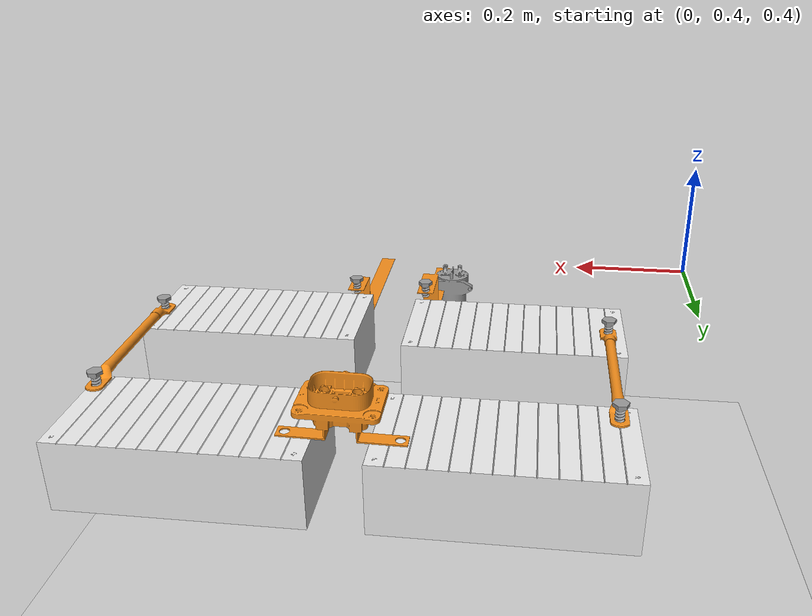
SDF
<sdf version="1.6">
 <world name="Pack6">
  <include><uri>model://sun</uri></include>
  <include><uri>model://ground_plane</uri></include>
  <include>
   <uri>/home/wanghu26/battery_ws/src/battery_model/model_editor_models/HW_battery_module_sc_fr_half</uri>
   <pose>0.308 0.775 0.40 0 0 0</pose>
  </include>
  <include>
   <uri>/home/wanghu26/battery_ws/src/battery_model/model_editor_models/HW_battery_module_sc_fr_1_half</uri>
   <pose>0.308 1.078 0.40 0 0 0</pose>
  </include>
  <include>
   <uri>/home/wanghu26/battery_ws/src/battery_model/model_editor_models/HW_battery_module_sc_fr_2_half</uri>
   <pose>0.71 1.078 0.40 0 0 0</pose>
  </include>
  <include>
   <uri>/home/wanghu26/battery_ws/src/battery_model/model_editor_models/HW_battery_module_sc_fr_3_half</uri>
   <pose>0.71 0.765 0.40 0 0 0</pose>
  </include>
  <include>
   <uri>/home/wanghu26/battery_ws/src/battery_model/model_editor_models/HW_HV_cable_sc_f</uri>
   <pose>0.17 0.928 0.47 0 0 0</pose>
  </include>
  <include>
   <uri>/home/wanghu26/battery_ws/src/battery_model/model_editor_models/HW_HV_cable_sc_f_1</uri>
   <pose>0.85 0.926 0.473 0 0 0</pose>
  </include>
  <include>
   <uri>/home/wanghu26/battery_ws/src/battery_model/model_editor_models/HW_tap_bolt_sc_f_0</uri>
   <pose>0.455 0.703 0.47 0 0 0</pose>
  </include>
  <include>
   <uri>/home/wanghu26/battery_ws/src/battery_model/model_editor_models/HW_tap_bolt_sc_f_1</uri>
   <pose>0.17 0.810 0.47 0 0 0</pose>
  </include>
  <include>
   <uri>/home/wanghu26/battery_ws/src/battery_model/model_editor_models/HW_tap_bolt_sc_f_2</uri>
   <pose>0.17 1.045 0.47 0 0 0</pose>
  </include>
  <include>
   <uri>/home/wanghu26/battery_ws/src/battery_model/model_editor_models/HW_tap_bolt_sc_f_3</uri>
   <pose>0.85 1.045 0.47 0 0 0</pose>
  </include>
  <include>
   <uri>/home/wanghu26/battery_ws/src/battery_model/model_editor_models/HW_tap_bolt_sc_f_4</uri>
   <pose>0.85 0.810 0.47 0 0 0</pose>
  </include>
  <include>
   <uri>/home/wanghu26/battery_ws/src/battery_model/model_editor_models/HW_tap_bolt_sc_f_5</uri>
   <pose>0.568 0.700 0.47 0 0 0</pose>
  </include>
  <include>
   <uri>/home/wanghu26/battery_ws/src/battery_model/model_editor_models/Contactor</uri>
   <pose>0.443 0.509 0.4 0 0 0</pose>
  </include>
  <include>
   <uri>/home/wanghu26/battery_ws/src/battery_model/model_editor_models/bus_neg</uri>
   <pose>0.555 0.713 0.470 0 0 0</pose>
  </include>
  <include>
   <uri>/home/wanghu26/battery_ws/src/battery_model/model_editor_models/bus_pos</uri>
   <pose>0.442 0.712 0.470 0 0 0</pose>
  </include>
  <include>
   <uri>/home/wanghu26/battery_ws/src/battery_model/model_editor_models/MSD</uri>
   <pose>0.496 1.129 0.482 0 0 0</pose>
  </include>
 </world>
</sdf>

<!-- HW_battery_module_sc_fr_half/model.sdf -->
<sdf version='1.6'>
  <model name='HW_battery_module_sc_fr_half'>
    <link name='link_1'>
      <inertial>
        <mass>10</mass>
        <inertia>
          <ixx>0.1275</ixx>
          <ixy>0</ixy>
          <ixz>0</ixz>
          <iyy>0.3997</iyy>
          <iyz>0</iyz>
          <izz>0.4538</izz>
        </inertia>
      </inertial>
      <pose>-0 0 0 0 -0 0</pose>
      <visual name='visual'>
        <pose>0 0 0 0 -0 0</pose>
        <geometry>
          <mesh>
            <uri>/home/wanghu26/battery_ws/src/battery_model/battery_model_stl/HW_Battery Module.stl</uri>
            <scale>0.5 0.5 0.5</scale>
          </mesh>
        </geometry>
        <material>
          <lighting>1</lighting>
          <script>
            <uri>file://media/materials/scripts/gazebo.material</uri>
            <name>Gazebo/White</name>
          </script>
          <shader type='pixel'/>
        </material>
        <transparency>0</transparency>
        <cast_shadows>1</cast_shadows>
      </visual>
      <collision name='collision'>
        <laser_retro>0</laser_retro>
        <max_contacts>10</max_contacts>
        <pose>0 0 0 0 -0 0</pose>
        <geometry>
          <box>
            <size>0.33 0.165 0.105</size>
          </box>
        </geometry>
        <surface>
          <friction>
            <ode>
              <mu>1</mu>
              <mu2>1</mu2>
              <fdir1>0 0 0</fdir1>
              <slip1>0</slip1>
              <slip2>0</slip2>
            </ode>
            <torsional>
              <coefficient>1</coefficient>
              <patch_radius>0</patch_radius>
              <surface_radius>0</surface_radius>
              <use_patch_radius>1</use_patch_radius>
              <ode>
                <slip>0</slip>
              </ode>
            </torsional>
          </friction>
          <bounce>
            <restitution_coefficient>0</restitution_coefficient>
            <threshold>1e+06</threshold>
          </bounce>
          <contact>
            <collide_without_contact>0</collide_without_contact>
            <collide_without_contact_bitmask>1</collide_without_contact_bitmask>
            <collide_bitmask>1</collide_bitmask>
            <ode>
              <soft_cfm>0</soft_cfm>
              <soft_erp>0.2</soft_erp>
              <kp>1e+13</kp>
              <kd>1</kd>
              <max_vel>0.01</max_vel>
              <min_depth>0.0001</min_depth>
            </ode>
            <bullet>
              <split_impulse>1</split_impulse>
              <split_impulse_penetration_threshold>-0.01</split_impulse_penetration_threshold>
              <soft_cfm>0</soft_cfm>
              <soft_erp>0.2</soft_erp>
              <kp>1e+13</kp>
              <kd>1</kd>
            </bullet>
          </contact>
        </surface>
      </collision>
    </link>
    <static>1</static>
    <allow_auto_disable>1</allow_auto_disable>
  </model>
</sdf>

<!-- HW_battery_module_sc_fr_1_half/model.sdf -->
<sdf version='1.6'>
  <model name='HW_battery_module_sc_fr_1_half'>
    <link name='link_1'>
      <inertial>
        <mass>10</mass>
        <inertia>
          <ixx>0.1275</ixx>
          <ixy>0</ixy>
          <ixz>0</ixz>
          <iyy>0.3997</iyy>
          <iyz>0</iyz>
          <izz>0.4538</izz>
        </inertia>
      </inertial>
      <pose>-0 0 0 0 -0 0</pose>
      <visual name='visual'>
        <pose>0 0 0 0 -0 0</pose>
        <geometry>
          <mesh>
            <uri>/home/wanghu26/battery_ws/src/battery_model/battery_model_stl/HW_Battery Module.stl</uri>
            <scale>0.5 0.5 0.5</scale>
          </mesh>
        </geometry>
        <material>
          <lighting>1</lighting>
          <script>
            <uri>file://media/materials/scripts/gazebo.material</uri>
            <name>Gazebo/White</name>
          </script>
          <shader type='pixel'/>
        </material>
        <transparency>0</transparency>
        <cast_shadows>1</cast_shadows>
      </visual>
      <collision name='collision'>
        <laser_retro>0</laser_retro>
        <max_contacts>10</max_contacts>
        <pose>0 0 0 0 -0 0</pose>
        <geometry>
          <box>
            <size>0.33 0.165 0.105</size>
          </box>
        </geometry>
        <surface>
          <friction>
            <ode>
              <mu>1</mu>
              <mu2>1</mu2>
              <fdir1>0 0 0</fdir1>
              <slip1>0</slip1>
              <slip2>0</slip2>
            </ode>
            <torsional>
              <coefficient>1</coefficient>
              <patch_radius>0</patch_radius>
              <surface_radius>0</surface_radius>
              <use_patch_radius>1</use_patch_radius>
              <ode>
                <slip>0</slip>
              </ode>
            </torsional>
          </friction>
          <bounce>
            <restitution_coefficient>0</restitution_coefficient>
            <threshold>1e+06</threshold>
          </bounce>
          <contact>
            <collide_without_contact>0</collide_without_contact>
            <collide_without_contact_bitmask>1</collide_without_contact_bitmask>
            <collide_bitmask>1</collide_bitmask>
            <ode>
              <soft_cfm>0</soft_cfm>
              <soft_erp>0.2</soft_erp>
              <kp>1e+13</kp>
              <kd>1</kd>
              <max_vel>0.01</max_vel>
              <min_depth>0.0001</min_depth>
            </ode>
            <bullet>
              <split_impulse>1</split_impulse>
              <split_impulse_penetration_threshold>-0.01</split_impulse_penetration_threshold>
              <soft_cfm>0</soft_cfm>
              <soft_erp>0.2</soft_erp>
              <kp>1e+13</kp>
              <kd>1</kd>
            </bullet>
          </contact>
        </surface>
      </collision>
    </link>
    <static>1</static>
    <allow_auto_disable>1</allow_auto_disable>
  </model>
</sdf>

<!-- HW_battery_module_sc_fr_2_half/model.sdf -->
<sdf version='1.6'>
  <model name='HW_battery_module_sc_fr_2_half'>
    <link name='link_1'>
      <inertial>
        <mass>10</mass>
        <inertia>
          <ixx>0.1275</ixx>
          <ixy>0</ixy>
          <ixz>0</ixz>
          <iyy>0.3997</iyy>
          <iyz>0</iyz>
          <izz>0.4538</izz>
        </inertia>
      </inertial>
      <pose>-0 0 0 0 -0 0</pose>
      <visual name='visual'>
        <pose>0 0 0 0 -0 0</pose>
        <geometry>
          <mesh>
            <uri>/home/wanghu26/battery_ws/src/battery_model/battery_model_stl/HW_Battery Module.stl</uri>
            <scale>0.5 0.5 0.5</scale>
          </mesh>
        </geometry>
        <material>
          <lighting>1</lighting>
          <script>
            <uri>file://media/materials/scripts/gazebo.material</uri>
            <name>Gazebo/White</name>
          </script>
          <shader type='pixel'/>
        </material>
        <transparency>0</transparency>
        <cast_shadows>1</cast_shadows>
      </visual>
      <collision name='collision'>
        <laser_retro>0</laser_retro>
        <max_contacts>10</max_contacts>
        <pose>0 0 0 0 -0 0</pose>
        <geometry>
          <box>
            <size>0.33 0.165 0.105</size>
          </box>
        </geometry>
        <surface>
          <friction>
            <ode>
              <mu>1</mu>
              <mu2>1</mu2>
              <fdir1>0 0 0</fdir1>
              <slip1>0</slip1>
              <slip2>0</slip2>
            </ode>
            <torsional>
              <coefficient>1</coefficient>
              <patch_radius>0</patch_radius>
              <surface_radius>0</surface_radius>
              <use_patch_radius>1</use_patch_radius>
              <ode>
                <slip>0</slip>
              </ode>
            </torsional>
          </friction>
          <bounce>
            <restitution_coefficient>0</restitution_coefficient>
            <threshold>1e+06</threshold>
          </bounce>
          <contact>
            <collide_without_contact>0</collide_without_contact>
            <collide_without_contact_bitmask>1</collide_without_contact_bitmask>
            <collide_bitmask>1</collide_bitmask>
            <ode>
              <soft_cfm>0</soft_cfm>
              <soft_erp>0.2</soft_erp>
              <kp>1e+13</kp>
              <kd>1</kd>
              <max_vel>0.01</max_vel>
              <min_depth>0.0001</min_depth>
            </ode>
            <bullet>
              <split_impulse>1</split_impulse>
              <split_impulse_penetration_threshold>-0.01</split_impulse_penetration_threshold>
              <soft_cfm>0</soft_cfm>
              <soft_erp>0.2</soft_erp>
              <kp>1e+13</kp>
              <kd>1</kd>
            </bullet>
          </contact>
        </surface>
      </collision>
    </link>
    <static>1</static>
    <allow_auto_disable>1</allow_auto_disable>
  </model>
</sdf>

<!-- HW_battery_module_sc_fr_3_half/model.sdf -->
<sdf version='1.6'>
  <model name='HW_battery_module_sc_fr_3_half'>
    <link name='link_1'>
      <inertial>
        <mass>10</mass>
        <inertia>
          <ixx>0.1275</ixx>
          <ixy>0</ixy>
          <ixz>0</ixz>
          <iyy>0.3997</iyy>
          <iyz>0</iyz>
          <izz>0.4538</izz>
        </inertia>
      </inertial>
      <pose>-0 0 0 0 -0 0</pose>
      <visual name='visual'>
        <pose>0 0 0 0 -0 0</pose>
        <geometry>
          <mesh>
            <uri>/home/wanghu26/battery_ws/src/battery_model/battery_model_stl/HW_Battery Module.stl</uri>
            <scale>0.5 0.5 0.5</scale>
          </mesh>
        </geometry>
        <material>
          <lighting>1</lighting>
          <script>
            <uri>file://media/materials/scripts/gazebo.material</uri>
            <name>Gazebo/White</name>
          </script>
          <shader type='pixel'/>
        </material>
        <transparency>0</transparency>
        <cast_shadows>1</cast_shadows>
      </visual>
      <collision name='collision'>
        <laser_retro>0</laser_retro>
        <max_contacts>10</max_contacts>
        <pose>0 0 0 0 -0 0</pose>
        <geometry>
          <box>
            <size>0.33 0.165 0.105</size>
          </box>
        </geometry>
        <surface>
          <friction>
            <ode>
              <mu>1</mu>
              <mu2>1</mu2>
              <fdir1>0 0 0</fdir1>
              <slip1>0</slip1>
              <slip2>0</slip2>
            </ode>
            <torsional>
              <coefficient>1</coefficient>
              <patch_radius>0</patch_radius>
              <surface_radius>0</surface_radius>
              <use_patch_radius>1</use_patch_radius>
              <ode>
                <slip>0</slip>
              </ode>
            </torsional>
          </friction>
          <bounce>
            <restitution_coefficient>0</restitution_coefficient>
            <threshold>1e+06</threshold>
          </bounce>
          <contact>
            <collide_without_contact>0</collide_without_contact>
            <collide_without_contact_bitmask>1</collide_without_contact_bitmask>
            <collide_bitmask>1</collide_bitmask>
            <ode>
              <soft_cfm>0</soft_cfm>
              <soft_erp>0.2</soft_erp>
              <kp>1e+13</kp>
              <kd>1</kd>
              <max_vel>0.01</max_vel>
              <min_depth>0.0001</min_depth>
            </ode>
            <bullet>
              <split_impulse>1</split_impulse>
              <split_impulse_penetration_threshold>-0.01</split_impulse_penetration_threshold>
              <soft_cfm>0</soft_cfm>
              <soft_erp>0.2</soft_erp>
              <kp>1e+13</kp>
              <kd>1</kd>
            </bullet>
          </contact>
        </surface>
      </collision>
    </link>
    <static>1</static>
    <allow_auto_disable>1</allow_auto_disable>
  </model>
</sdf>

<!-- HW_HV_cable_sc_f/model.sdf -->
<sdf version='1.6'>
  <model name='HW_HV_cable_sc_f'>
    <link name='link_1'>
      <inertial>
        <mass>0.5</mass>
        <inertia>
          <ixx>0.0017</ixx>
          <ixy>0</ixy>
          <ixz>0</ixz>
          <iyy>3.3333e-4</iyy>
          <iyz>0</iyz>
          <izz>0.0017</izz>
        </inertia>
      </inertial>
      <pose>0 0 -0 0 -0 0</pose>
      <visual name='visual'>
        <pose>0 0 0 0 -0 0</pose>
        <geometry>
          <mesh>
            <uri>/home/wanghu26/battery_ws/src/battery_model/battery_model_stl/HW_HV_cable .stl</uri>
            <scale>1 1 1</scale>
          </mesh>
        </geometry>
        <material>
          <lighting>1</lighting>
          <script>
            <uri>file://media/materials/scripts/gazebo.material</uri>
            <name>Gazebo/Orange</name>
          </script>
          <shader type='pixel'/>
        </material>
        <transparency>0</transparency>
        <cast_shadows>1</cast_shadows>
      </visual>
      <collision name='collision'>
        <laser_retro>0</laser_retro>
        <max_contacts>10</max_contacts>
        <pose>0.2 0 0 0 -0 0</pose>
        <geometry>
            <box>
              <size>0.02 0.15 0.02</size>
            </box>
        </geometry>
        <surface>
          <friction>
            <ode>
              <mu>1</mu>
              <mu2>1</mu2>
              <fdir1>0 0 0</fdir1>
              <slip1>0</slip1>
              <slip2>0</slip2>
            </ode>
            <torsional>
              <coefficient>1</coefficient>
              <patch_radius>0</patch_radius>
              <surface_radius>0</surface_radius>
              <use_patch_radius>1</use_patch_radius>
              <ode>
                <slip>0</slip>
              </ode>
            </torsional>
          </friction>
          <bounce>
            <restitution_coefficient>0</restitution_coefficient>
            <threshold>1e+06</threshold>
          </bounce>
          <contact>
            <collide_without_contact>0</collide_without_contact>
            <collide_without_contact_bitmask>1</collide_without_contact_bitmask>
            <collide_bitmask>1</collide_bitmask>
            <ode>
              <soft_cfm>0</soft_cfm>
              <soft_erp>0.2</soft_erp>
              <kp>1e+13</kp>
              <kd>1</kd>
              <max_vel>0.01</max_vel>
              <min_depth>0</min_depth>
            </ode>
            <bullet>
              <split_impulse>1</split_impulse>
              <split_impulse_penetration_threshold>-0.01</split_impulse_penetration_threshold>
              <soft_cfm>0</soft_cfm>
              <soft_erp>0.2</soft_erp>
              <kp>1e+13</kp>
              <kd>1</kd>
            </bullet>
          </contact>
        </surface>
      </collision>
    </link>
    <static>1</static>
    <allow_auto_disable>1</allow_auto_disable>

  <plugin name="groun_truth" filename="libgazebo_ros_p3d.so">
	<frameName>map</frameName>
	<bodyName>link_1</bodyName>
	<topicName>odom0a</topicName>
	<updateRate>30.0</updateRate>
  </plugin>

  </model>
</sdf>

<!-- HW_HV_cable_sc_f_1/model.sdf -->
<sdf version='1.6'>
  <model name='HW_HV_cable_sc_f_1'>
    <link name='link_1'>
      <inertial>
        <mass>0.5</mass>
        <inertia>
          <ixx>0.0017</ixx>
          <ixy>0</ixy>
          <ixz>0</ixz>
          <iyy>3.3333e-4</iyy>
          <iyz>0</iyz>
          <izz>0.0017</izz>
        </inertia>
      </inertial>
      <pose>0 0 -0 0 -0 0</pose>
      <visual name='visual'>
        <pose>0 0 0 0 -0 0</pose>
        <geometry>
          <mesh>
            <uri>/home/wanghu26/battery_ws/src/battery_model/battery_model_stl/HW_HV_cable .stl</uri>
            <scale>1 1 1</scale>
          </mesh>
        </geometry>
        <material>
          <lighting>1</lighting>
          <script>
            <uri>file://media/materials/scripts/gazebo.material</uri>
            <name>Gazebo/Orange</name>
          </script>
          <shader type='pixel'/>
        </material>
        <transparency>0</transparency>
        <cast_shadows>1</cast_shadows>
      </visual>
      <collision name='collision'>
        <laser_retro>0</laser_retro>
        <max_contacts>10</max_contacts>
        <pose>0.1 0 0 0 -0 0</pose>
        <geometry>
            <box>
              <size>0.02 0.2 0.02</size>
            </box>
        </geometry>
        <surface>
          <friction>
            <ode>
              <mu>1</mu>
              <mu2>1</mu2>
              <fdir1>0 0 0</fdir1>
              <slip1>0</slip1>
              <slip2>0</slip2>
            </ode>
            <torsional>
              <coefficient>1</coefficient>
              <patch_radius>0</patch_radius>
              <surface_radius>0</surface_radius>
              <use_patch_radius>1</use_patch_radius>
              <ode>
                <slip>0</slip>
              </ode>
            </torsional>
          </friction>
          <bounce>
            <restitution_coefficient>0</restitution_coefficient>
            <threshold>1e+06</threshold>
          </bounce>
          <contact>
            <collide_without_contact>0</collide_without_contact>
            <collide_without_contact_bitmask>1</collide_without_contact_bitmask>
            <collide_bitmask>1</collide_bitmask>
            <ode>
              <soft_cfm>0</soft_cfm>
              <soft_erp>0.2</soft_erp>
              <kp>1e+13</kp>
              <kd>1</kd>
              <max_vel>0.01</max_vel>
              <min_depth>0</min_depth>
            </ode>
            <bullet>
              <split_impulse>1</split_impulse>
              <split_impulse_penetration_threshold>-0.01</split_impulse_penetration_threshold>
              <soft_cfm>0</soft_cfm>
              <soft_erp>0.2</soft_erp>
              <kp>1e+13</kp>
              <kd>1</kd>
            </bullet>
          </contact>
        </surface>
      </collision>
    </link>
    <static>1</static>
    <allow_auto_disable>1</allow_auto_disable>

  <plugin name="groun_truth" filename="libgazebo_ros_p3d.so">
	<frameName>map</frameName>
	<bodyName>link_1</bodyName>
	<topicName>odom1a</topicName>
	<updateRate>30.0</updateRate>
  </plugin>

  </model>
</sdf>

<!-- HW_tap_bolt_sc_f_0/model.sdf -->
<sdf version='1.6'>
  <model name='HW_tap_bolt_sc_f_0'>
    <link name='link_2'>
      <inertial>
        <mass>1</mass>
        <inertia>
          <ixx>0.0166667</ixx>
          <ixy>0</ixy>
          <ixz>0</ixz>
          <iyy>0.0166667</iyy>
          <iyz>0</iyz>
          <izz>0.0166667</izz>
        </inertia>
      </inertial>
      <pose>0 0 -1e-06 3.14159 -0.002979 3.14159</pose>
      <visual name='visual'>
        <pose>0 0 0 0 -0 0</pose>
        <geometry>
          <mesh>
            <uri>/home/wanghu26/battery_ws/src/battery_model/battery_model_stl/HW_hex_bolt_tap_thread.stl</uri>
            <scale>1 1 1</scale>
          </mesh>
        </geometry>
        <material>
          <lighting>1</lighting>
          <script>
            <uri>file://media/materials/scripts/gazebo.material</uri>
            <name>Gazebo/Grey</name>
          </script>
          <shader type='pixel'/>
        </material>
        <transparency>0</transparency>
        <cast_shadows>1</cast_shadows>
      </visual>
      <collision name='collision'>
        <laser_retro>0</laser_retro>
        <max_contacts>10</max_contacts>
        <pose>0 -0.1 0 0 -0 0</pose>
        <geometry>
          <box>
            <size>0.02 0.02 0.04</size>
          </box>
        </geometry>
        <surface>
          <friction>
            <ode>
              <mu>1</mu>
              <mu2>1</mu2>
              <fdir1>0 0 0</fdir1>
              <slip1>0</slip1>
              <slip2>0</slip2>
            </ode>
            <torsional>
              <coefficient>1</coefficient>
              <patch_radius>0.1</patch_radius>
              <surface_radius>0.1</surface_radius>
              <use_patch_radius>1</use_patch_radius>
              <ode>
                <slip>0</slip>
              </ode>
            </torsional>
          </friction>
          <bounce>
            <restitution_coefficient>0</restitution_coefficient>
            <threshold>1e+06</threshold>
          </bounce>
          <contact>
            <collide_without_contact>0</collide_without_contact>
            <collide_without_contact_bitmask>1</collide_without_contact_bitmask>
            <collide_bitmask>1</collide_bitmask>
            <ode>
              <soft_cfm>0</soft_cfm>
              <soft_erp>0.2</soft_erp>
              <kp>1e+13</kp>
              <kd>1</kd>
              <max_vel>0.01</max_vel>
              <min_depth>0</min_depth>
            </ode>
            <bullet>
              <split_impulse>1</split_impulse>
              <split_impulse_penetration_threshold>-0.01</split_impulse_penetration_threshold>
              <soft_cfm>0</soft_cfm>
              <soft_erp>0.2</soft_erp>
              <kp>1e+13</kp>
              <kd>1</kd>
            </bullet>
          </contact>
        </surface>
      </collision>
    </link>
    <static>1</static>
    <allow_auto_disable>1</allow_auto_disable>
  </model>
</sdf>

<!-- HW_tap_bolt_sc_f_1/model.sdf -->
<sdf version='1.6'>
  <model name='HW_tap_bolt_sc_f_1'>
    <link name='link_2'>
      <inertial>
        <mass>1</mass>
        <inertia>
          <ixx>0.0166667</ixx>
          <ixy>0</ixy>
          <ixz>0</ixz>
          <iyy>0.0166667</iyy>
          <iyz>0</iyz>
          <izz>0.0166667</izz>
        </inertia>
      </inertial>
      <pose>0 0 -1e-06 3.14159 -0.002979 3.14159</pose>
      <visual name='visual'>
        <pose>0 0 0 0 -0 0</pose>
        <geometry>
          <mesh>
            <uri>/home/wanghu26/battery_ws/src/battery_model/battery_model_stl/HW_hex_bolt_tap_thread.stl</uri>
            <scale>1 1 1</scale>
          </mesh>
        </geometry>
        <material>
          <lighting>1</lighting>
          <script>
            <uri>file://media/materials/scripts/gazebo.material</uri>
            <name>Gazebo/Grey</name>
          </script>
          <shader type='pixel'/>
        </material>
        <transparency>0</transparency>
        <cast_shadows>1</cast_shadows>
      </visual>
      <collision name='collision'>
        <laser_retro>0</laser_retro>
        <max_contacts>10</max_contacts>
        <pose>0 0.1 0 0 -0 0</pose>
        <geometry>
          <box>
            <size>0.02 0.02 0.04</size>
          </box>
        </geometry>
        <surface>
          <friction>
            <ode>
              <mu>1</mu>
              <mu2>1</mu2>
              <fdir1>0 0 0</fdir1>
              <slip1>0</slip1>
              <slip2>0</slip2>
            </ode>
            <torsional>
              <coefficient>1</coefficient>
              <patch_radius>0.1</patch_radius>
              <surface_radius>0.1</surface_radius>
              <use_patch_radius>1</use_patch_radius>
              <ode>
                <slip>0</slip>
              </ode>
            </torsional>
          </friction>
          <bounce>
            <restitution_coefficient>0</restitution_coefficient>
            <threshold>1e+06</threshold>
          </bounce>
          <contact>
            <collide_without_contact>0</collide_without_contact>
            <collide_without_contact_bitmask>1</collide_without_contact_bitmask>
            <collide_bitmask>1</collide_bitmask>
            <ode>
              <soft_cfm>0</soft_cfm>
              <soft_erp>0.2</soft_erp>
              <kp>1e+13</kp>
              <kd>1</kd>
              <max_vel>0.01</max_vel>
              <min_depth>0</min_depth>
            </ode>
            <bullet>
              <split_impulse>1</split_impulse>
              <split_impulse_penetration_threshold>-0.01</split_impulse_penetration_threshold>
              <soft_cfm>0</soft_cfm>
              <soft_erp>0.2</soft_erp>
              <kp>1e+13</kp>
              <kd>1</kd>
            </bullet>
          </contact>
        </surface>
      </collision>
    </link>
    <static>1</static>
    <allow_auto_disable>1</allow_auto_disable>
  </model>
</sdf>

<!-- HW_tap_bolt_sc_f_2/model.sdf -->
<sdf version='1.6'>
  <model name='HW_tap_bolt_sc_f_2'>
    <link name='link_2'>
      <inertial>
        <mass>1</mass>
        <inertia>
          <ixx>0.0166667</ixx>
          <ixy>0</ixy>
          <ixz>0</ixz>
          <iyy>0.0166667</iyy>
          <iyz>0</iyz>
          <izz>0.0166667</izz>
        </inertia>
      </inertial>
      <pose>0 0 -1e-06 3.14159 -0.002979 3.14159</pose>
      <visual name='visual'>
        <pose>0 0 0 0 -0 0</pose>
        <geometry>
          <mesh>
            <uri>/home/wanghu26/battery_ws/src/battery_model/battery_model_stl/HW_hex_bolt_tap_thread.stl</uri>
            <scale>1 1 1</scale>
          </mesh>
        </geometry>
        <material>
          <lighting>1</lighting>
          <script>
            <uri>file://media/materials/scripts/gazebo.material</uri>
            <name>Gazebo/Grey</name>
          </script>
          <shader type='pixel'/>
        </material>
        <transparency>0</transparency>
        <cast_shadows>1</cast_shadows>
      </visual>
      <collision name='collision'>
        <laser_retro>0</laser_retro>
        <max_contacts>10</max_contacts>
        <pose>0 0.1 0 0 -0 0</pose>
        <geometry>
          <box>
            <size>0.02 0.02 0.04</size>
          </box>
        </geometry>
        <surface>
          <friction>
            <ode>
              <mu>1</mu>
              <mu2>1</mu2>
              <fdir1>0 0 0</fdir1>
              <slip1>0</slip1>
              <slip2>0</slip2>
            </ode>
            <torsional>
              <coefficient>1</coefficient>
              <patch_radius>0.1</patch_radius>
              <surface_radius>0.1</surface_radius>
              <use_patch_radius>1</use_patch_radius>
              <ode>
                <slip>0</slip>
              </ode>
            </torsional>
          </friction>
          <bounce>
            <restitution_coefficient>0</restitution_coefficient>
            <threshold>1e+06</threshold>
          </bounce>
          <contact>
            <collide_without_contact>0</collide_without_contact>
            <collide_without_contact_bitmask>1</collide_without_contact_bitmask>
            <collide_bitmask>1</collide_bitmask>
            <ode>
              <soft_cfm>0</soft_cfm>
              <soft_erp>0.2</soft_erp>
              <kp>1e+13</kp>
              <kd>1</kd>
              <max_vel>0.01</max_vel>
              <min_depth>0</min_depth>
            </ode>
            <bullet>
              <split_impulse>1</split_impulse>
              <split_impulse_penetration_threshold>-0.01</split_impulse_penetration_threshold>
              <soft_cfm>0</soft_cfm>
              <soft_erp>0.2</soft_erp>
              <kp>1e+13</kp>
              <kd>1</kd>
            </bullet>
          </contact>
        </surface>
      </collision>
    </link>
    <static>1</static>
    <allow_auto_disable>1</allow_auto_disable>
  </model>
</sdf>

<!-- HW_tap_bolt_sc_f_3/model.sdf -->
<sdf version='1.6'>
  <model name='HW_tap_bolt_sc_f_3'>
    <link name='link_2'>
      <inertial>
        <mass>1</mass>
        <inertia>
          <ixx>0.0166667</ixx>
          <ixy>0</ixy>
          <ixz>0</ixz>
          <iyy>0.0166667</iyy>
          <iyz>0</iyz>
          <izz>0.0166667</izz>
        </inertia>
      </inertial>
      <pose>0 0 -1e-06 3.14159 -0.002979 3.14159</pose>
      <visual name='visual'>
        <pose>0 0 0 0 -0 0</pose>
        <geometry>
          <mesh>
            <uri>/home/wanghu26/battery_ws/src/battery_model/battery_model_stl/HW_hex_bolt_tap_thread.stl</uri>
            <scale>1 1 1</scale>
          </mesh>
        </geometry>
        <material>
          <lighting>1</lighting>
          <script>
            <uri>file://media/materials/scripts/gazebo.material</uri>
            <name>Gazebo/Grey</name>
          </script>
          <shader type='pixel'/>
        </material>
        <transparency>0</transparency>
        <cast_shadows>1</cast_shadows>
      </visual>
      <collision name='collision'>
        <laser_retro>0</laser_retro>
        <max_contacts>10</max_contacts>
        <pose>0 0.1 0 0 -0 0</pose>
        <geometry>
          <box>
            <size>0.02 0.02 0.04</size>
          </box>
        </geometry>
        <surface>
          <friction>
            <ode>
              <mu>1</mu>
              <mu2>1</mu2>
              <fdir1>0 0 0</fdir1>
              <slip1>0</slip1>
              <slip2>0</slip2>
            </ode>
            <torsional>
              <coefficient>1</coefficient>
              <patch_radius>0.1</patch_radius>
              <surface_radius>0.1</surface_radius>
              <use_patch_radius>1</use_patch_radius>
              <ode>
                <slip>0</slip>
              </ode>
            </torsional>
          </friction>
          <bounce>
            <restitution_coefficient>0</restitution_coefficient>
            <threshold>1e+06</threshold>
          </bounce>
          <contact>
            <collide_without_contact>0</collide_without_contact>
            <collide_without_contact_bitmask>1</collide_without_contact_bitmask>
            <collide_bitmask>1</collide_bitmask>
            <ode>
              <soft_cfm>0</soft_cfm>
              <soft_erp>0.2</soft_erp>
              <kp>1e+13</kp>
              <kd>1</kd>
              <max_vel>0.01</max_vel>
              <min_depth>0</min_depth>
            </ode>
            <bullet>
              <split_impulse>1</split_impulse>
              <split_impulse_penetration_threshold>-0.01</split_impulse_penetration_threshold>
              <soft_cfm>0</soft_cfm>
              <soft_erp>0.2</soft_erp>
              <kp>1e+13</kp>
              <kd>1</kd>
            </bullet>
          </contact>
        </surface>
      </collision>
    </link>
    <static>1</static>
    <allow_auto_disable>1</allow_auto_disable>
  </model>
</sdf>

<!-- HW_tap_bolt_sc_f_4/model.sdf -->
<sdf version='1.6'>
  <model name='HW_tap_bolt_sc_f_4'>
    <link name='link_2'>
      <inertial>
        <mass>1</mass>
        <inertia>
          <ixx>0.0166667</ixx>
          <ixy>0</ixy>
          <ixz>0</ixz>
          <iyy>0.0166667</iyy>
          <iyz>0</iyz>
          <izz>0.0166667</izz>
        </inertia>
      </inertial>
      <pose>0 0 -1e-06 3.14159 -0.002979 3.14159</pose>
      <visual name='visual'>
        <pose>0 0 0 0 -0 0</pose>
        <geometry>
          <mesh>
            <uri>/home/wanghu26/battery_ws/src/battery_model/battery_model_stl/HW_hex_bolt_tap_thread.stl</uri>
            <scale>1 1 1</scale>
          </mesh>
        </geometry>
        <material>
          <lighting>1</lighting>
          <script>
            <uri>file://media/materials/scripts/gazebo.material</uri>
            <name>Gazebo/Grey</name>
          </script>
          <shader type='pixel'/>
        </material>
        <transparency>0</transparency>
        <cast_shadows>1</cast_shadows>
      </visual>
      <collision name='collision'>
        <laser_retro>0</laser_retro>
        <max_contacts>10</max_contacts>
        <pose>0 0.1 0 0 -0 0</pose>
        <geometry>
          <box>
            <size>0.02 0.02 0.04</size>
          </box>
        </geometry>
        <surface>
          <friction>
            <ode>
              <mu>1</mu>
              <mu2>1</mu2>
              <fdir1>0 0 0</fdir1>
              <slip1>0</slip1>
              <slip2>0</slip2>
            </ode>
            <torsional>
              <coefficient>1</coefficient>
              <patch_radius>0.1</patch_radius>
              <surface_radius>0.1</surface_radius>
              <use_patch_radius>1</use_patch_radius>
              <ode>
                <slip>0</slip>
              </ode>
            </torsional>
          </friction>
          <bounce>
            <restitution_coefficient>0</restitution_coefficient>
            <threshold>1e+06</threshold>
          </bounce>
          <contact>
            <collide_without_contact>0</collide_without_contact>
            <collide_without_contact_bitmask>1</collide_without_contact_bitmask>
            <collide_bitmask>1</collide_bitmask>
            <ode>
              <soft_cfm>0</soft_cfm>
              <soft_erp>0.2</soft_erp>
              <kp>1e+13</kp>
              <kd>1</kd>
              <max_vel>0.01</max_vel>
              <min_depth>0</min_depth>
            </ode>
            <bullet>
              <split_impulse>1</split_impulse>
              <split_impulse_penetration_threshold>-0.01</split_impulse_penetration_threshold>
              <soft_cfm>0</soft_cfm>
              <soft_erp>0.2</soft_erp>
              <kp>1e+13</kp>
              <kd>1</kd>
            </bullet>
          </contact>
        </surface>
      </collision>
    </link>
    <static>1</static>
    <allow_auto_disable>1</allow_auto_disable>
  </model>
</sdf>

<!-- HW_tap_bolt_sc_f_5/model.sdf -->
<sdf version='1.6'>
  <model name='HW_tap_bolt_sc_f_5'>
    <link name='link_2'>
      <inertial>
        <mass>1</mass>
        <inertia>
          <ixx>0.0166667</ixx>
          <ixy>0</ixy>
          <ixz>0</ixz>
          <iyy>0.0166667</iyy>
          <iyz>0</iyz>
          <izz>0.0166667</izz>
        </inertia>
      </inertial>
      <pose>0 0 -1e-06 3.14159 -0.002979 3.14159</pose>
      <visual name='visual'>
        <pose>0 0 0 0 -0 0</pose>
        <geometry>
          <mesh>
            <uri>/home/wanghu26/battery_ws/src/battery_model/battery_model_stl/HW_hex_bolt_tap_thread.stl</uri>
            <scale>1 1 1</scale>
          </mesh>
        </geometry>
        <material>
          <lighting>1</lighting>
          <script>
            <uri>file://media/materials/scripts/gazebo.material</uri>
            <name>Gazebo/Grey</name>
          </script>
          <shader type='pixel'/>
        </material>
        <transparency>0</transparency>
        <cast_shadows>1</cast_shadows>
      </visual>
      <collision name='collision'>
        <laser_retro>0</laser_retro>
        <max_contacts>10</max_contacts>
        <pose>0 -0.1 0 0 -0 0</pose>
        <geometry>
          <box>
            <size>0.02 0.02 0.04</size>
          </box>
        </geometry>
        <surface>
          <friction>
            <ode>
              <mu>1</mu>
              <mu2>1</mu2>
              <fdir1>0 0 0</fdir1>
              <slip1>0</slip1>
              <slip2>0</slip2>
            </ode>
            <torsional>
              <coefficient>1</coefficient>
              <patch_radius>0.1</patch_radius>
              <surface_radius>0.1</surface_radius>
              <use_patch_radius>1</use_patch_radius>
              <ode>
                <slip>0</slip>
              </ode>
            </torsional>
          </friction>
          <bounce>
            <restitution_coefficient>0</restitution_coefficient>
            <threshold>1e+06</threshold>
          </bounce>
          <contact>
            <collide_without_contact>0</collide_without_contact>
            <collide_without_contact_bitmask>1</collide_without_contact_bitmask>
            <collide_bitmask>1</collide_bitmask>
            <ode>
              <soft_cfm>0</soft_cfm>
              <soft_erp>0.2</soft_erp>
              <kp>1e+13</kp>
              <kd>1</kd>
              <max_vel>0.01</max_vel>
              <min_depth>0</min_depth>
            </ode>
            <bullet>
              <split_impulse>1</split_impulse>
              <split_impulse_penetration_threshold>-0.01</split_impulse_penetration_threshold>
              <soft_cfm>0</soft_cfm>
              <soft_erp>0.2</soft_erp>
              <kp>1e+13</kp>
              <kd>1</kd>
            </bullet>
          </contact>
        </surface>
      </collision>
    </link>
    <static>1</static>
    <allow_auto_disable>1</allow_auto_disable>
  </model>
</sdf>

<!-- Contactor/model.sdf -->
<sdf version='1.6'>
  <model name='Contactor'>
    <link name='link_1'>
      <pose frame=''>0 -0 -0 1.60329 -0 0</pose>
      <inertial>
        <mass>1</mass>
        <inertia>
          <ixx>0.166667</ixx>
          <ixy>0</ixy>
          <ixz>0</ixz>
          <iyy>0.166667</iyy>
          <iyz>0</iyz>
          <izz>0.166667</izz>
        </inertia>
        <pose frame=''>0 0 0 0 -0 0</pose>
      </inertial>
      <gravity>1</gravity>
      <self_collide>0</self_collide>
      <kinematic>0</kinematic>
      <visual name='visual'>
        <pose frame=''>0 0 0 0 -0 0</pose>
        <geometry>
          <mesh>
            <uri>/home/wanghu26/battery_ws/src/battery_model/battery_model_stl/HW_Tyco KiloVac EV200 Contactor Side Mount.stl</uri>
            <scale>1 1 1</scale>
          </mesh>
        </geometry>
        <material>
          <lighting>1</lighting>
          <script>
            <uri>file://media/materials/scripts/gazebo.material</uri>
            <name>Gazebo/Grey</name>
          </script>

        </material>
        <cast_shadows>1</cast_shadows>
        <transparency>0</transparency>
      </visual>
      <collision name='collision'>
        <laser_retro>0</laser_retro>
        <max_contacts>10</max_contacts>
        <pose frame=''>0 0 0 0 -0 0</pose>
        <geometry>
          <mesh>
            <uri>/home/wanghu26/battery_ws/src/battery_model/battery_model_stl/HW_Tyco KiloVac EV200 Contactor Side Mount.stl</uri>
          </mesh>
        </geometry>
        <surface>
          <friction>
            <ode>
              <mu>1</mu>
              <mu2>1</mu2>
              <fdir1>0 0 0</fdir1>
              <slip1>0</slip1>
              <slip2>0</slip2>
            </ode>
            <torsional>
              <coefficient>1</coefficient>
              <patch_radius>0</patch_radius>
              <surface_radius>0</surface_radius>
              <use_patch_radius>1</use_patch_radius>
              <ode>
                <slip>0</slip>
              </ode>
            </torsional>
          </friction>
          <bounce>
            <restitution_coefficient>0</restitution_coefficient>
            <threshold>1e+06</threshold>
          </bounce>
          <contact>
            <collide_without_contact>0</collide_without_contact>
            <collide_without_contact_bitmask>1</collide_without_contact_bitmask>
            <collide_bitmask>1</collide_bitmask>
            <ode>
              <soft_cfm>0</soft_cfm>
              <soft_erp>0.2</soft_erp>
              <kp>1e+13</kp>
              <kd>1</kd>
              <max_vel>0.01</max_vel>
              <min_depth>0</min_depth>
            </ode>
            <bullet>
              <split_impulse>1</split_impulse>
              <split_impulse_penetration_threshold>-0.01</split_impulse_penetration_threshold>
              <soft_cfm>0</soft_cfm>
              <soft_erp>0.2</soft_erp>
              <kp>1e+13</kp>
              <kd>1</kd>
            </bullet>
          </contact>
        </surface>
      </collision>
    </link>
    <static>1</static>
    <allow_auto_disable>1</allow_auto_disable>
  </model>
</sdf>

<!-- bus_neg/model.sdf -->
<sdf version='1.6'>
  <model name='bus_neg'>
    <link name='link_3'>
      <pose frame=''>-0 0 -0 1.57326 -0 0</pose>
      <inertial>
        <mass>1</mass>
        <inertia>
          <ixx>0.166667</ixx>
          <ixy>0</ixy>
          <ixz>0</ixz>
          <iyy>0.166667</iyy>
          <iyz>0</iyz>
          <izz>0.166667</izz>
        </inertia>
      </inertial>
      <visual name='visual'>
        <pose frame=''>0 0 0 0 -0 0</pose>
        <geometry>
          <mesh>
            <uri>/home/wanghu26/battery_ws/src/battery_model/battery_model_stl/HW_bus_bar_neg.stl</uri>
            <scale>1 0.5 0.7</scale>
          </mesh>
        </geometry>
        <material>
          <lighting>1</lighting>
          <script>
            <uri>file://media/materials/scripts/gazebo.material</uri>
            <name>Gazebo/Orange</name>
          </script>

        </material>
        <cast_shadows>1</cast_shadows>
        <transparency>0</transparency>
      </visual>
      <collision name='collision'>
        <laser_retro>0</laser_retro>
        <max_contacts>10</max_contacts>
        <pose frame=''>0 0 0.1 0 -0 0</pose>
        <geometry>
          <mesh>
            <uri>/home/wanghu26/battery_ws/src/battery_model/battery_model_stl/HW_bus_bar_neg.stl</uri>
          </mesh>
        </geometry>
        <surface>
          <friction>
            <ode>
              <mu>1</mu>
              <mu2>1</mu2>
              <fdir1>0 0 0</fdir1>
              <slip1>0</slip1>
              <slip2>0</slip2>
            </ode>
            <torsional>
              <coefficient>1</coefficient>
              <patch_radius>0</patch_radius>
              <surface_radius>0</surface_radius>
              <use_patch_radius>1</use_patch_radius>
              <ode>
                <slip>0</slip>
              </ode>
            </torsional>
          </friction>
          <bounce>
            <restitution_coefficient>0</restitution_coefficient>
            <threshold>1e+06</threshold>
          </bounce>
          <contact>
            <collide_without_contact>0</collide_without_contact>
            <collide_without_contact_bitmask>1</collide_without_contact_bitmask>
            <collide_bitmask>1</collide_bitmask>
            <ode>
              <soft_cfm>0</soft_cfm>
              <soft_erp>0.2</soft_erp>
              <kp>1e+13</kp>
              <kd>1</kd>
              <max_vel>0.01</max_vel>
              <min_depth>0</min_depth>
            </ode>
            <bullet>
              <split_impulse>1</split_impulse>
              <split_impulse_penetration_threshold>-0.01</split_impulse_penetration_threshold>
              <soft_cfm>0</soft_cfm>
              <soft_erp>0.2</soft_erp>
              <kp>1e+13</kp>
              <kd>1</kd>
            </bullet>
          </contact>
        </surface>
      </collision>
    </link>
    <static>1</static>
    <allow_auto_disable>1</allow_auto_disable>
  </model>
</sdf>

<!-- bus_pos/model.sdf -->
<sdf version='1.6'>
  <model name='bus_pos'>
    <link name='link_5'>
      <pose frame=''>0 0 -0 1.56922 -0 0</pose>
      <inertial>
        <mass>1</mass>
        <inertia>
          <ixx>0.166667</ixx>
          <ixy>0</ixy>
          <ixz>0</ixz>
          <iyy>0.166667</iyy>
          <iyz>0</iyz>
          <izz>0.166667</izz>
        </inertia>
      </inertial>
      <visual name='visual'>
        <pose frame=''>0 0 0 0 -0 0</pose>
        <geometry>
          <mesh>
            <uri>/home/wanghu26/battery_ws/src/battery_model/battery_model_stl/HW_bus_bar_pos.stl</uri>
            <scale>1 0.5 1</scale>
          </mesh>
        </geometry>
        <material>
          <lighting>1</lighting>
          <script>
            <uri>file://media/materials/scripts/gazebo.material</uri>
            <name>Gazebo/Orange</name>
          </script>

        </material>
        <cast_shadows>1</cast_shadows>
        <transparency>0</transparency>
      </visual>
      <collision name='collision'>
        <laser_retro>0</laser_retro>
        <max_contacts>10</max_contacts>
        <pose frame=''>0 0 0.1 0 -0 0</pose>
        <geometry>
          <mesh>
            <uri>/home/wanghu26/battery_ws/src/battery_model/battery_model_stl/HW_bus_bar_pos.stl</uri>
          </mesh>
        </geometry>
        <surface>
          <friction>
            <ode>
              <mu>1</mu>
              <mu2>1</mu2>
              <fdir1>0 0 0</fdir1>
              <slip1>0</slip1>
              <slip2>0</slip2>
            </ode>
            <torsional>
              <coefficient>1</coefficient>
              <patch_radius>0</patch_radius>
              <surface_radius>0</surface_radius>
              <use_patch_radius>1</use_patch_radius>
              <ode>
                <slip>0</slip>
              </ode>
            </torsional>
          </friction>
          <bounce>
            <restitution_coefficient>0</restitution_coefficient>
            <threshold>1e+06</threshold>
          </bounce>
          <contact>
            <collide_without_contact>0</collide_without_contact>
            <collide_without_contact_bitmask>1</collide_without_contact_bitmask>
            <collide_bitmask>1</collide_bitmask>
            <ode>
              <soft_cfm>0</soft_cfm>
              <soft_erp>0.2</soft_erp>
              <kp>1e+13</kp>
              <kd>1</kd>
              <max_vel>0.01</max_vel>
              <min_depth>0</min_depth>
            </ode>
            <bullet>
              <split_impulse>1</split_impulse>
              <split_impulse_penetration_threshold>-0.01</split_impulse_penetration_threshold>
              <soft_cfm>0</soft_cfm>
              <soft_erp>0.2</soft_erp>
              <kp>1e+13</kp>
              <kd>1</kd>
            </bullet>
          </contact>
        </surface>
      </collision>
    </link>
    <static>1</static>
    <allow_auto_disable>1</allow_auto_disable>
  </model>
</sdf>

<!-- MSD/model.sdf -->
<sdf version='1.6'>
  <model name='MSD'>
    <link name='link_0'>
      <pose frame=''>0 0 0 0 -0 0</pose>
      <inertial>
        <mass>1</mass>
        <inertia>
          <ixx>0.166667</ixx>
          <ixy>0</ixy>
          <ixz>0</ixz>
          <iyy>0.166667</iyy>
          <iyz>0</iyz>
          <izz>0.166667</izz>
        </inertia>
      </inertial>
      <visual name='visual'>
        <pose frame=''>0 0 0 0 -0 0</pose>
        <geometry>
          <mesh>
            <uri>/home/wanghu26/battery_ws/src/battery_model/battery_model_stl/HW_MSD.stl</uri>
            <scale>1 1 1</scale>
          </mesh>
        </geometry>
        <material>
          <lighting>1</lighting>
          <script>
            <uri>file://media/materials/scripts/gazebo.material</uri>
            <name>Gazebo/Orange</name>
          </script>

        </material>
        <cast_shadows>1</cast_shadows>
        <transparency>0</transparency>
      </visual>
      <collision name='collision'>
        <laser_retro>0</laser_retro>
        <max_contacts>10</max_contacts>
        <pose frame=''>0 0 0 0 -0 0</pose>
        <geometry>
          <mesh>
            <uri>/home/wanghu26/battery_ws/src/battery_model/battery_model_stl/HW_MSD.stl</uri>
          </mesh>
        </geometry>
        <surface>
          <friction>
            <ode>
              <mu>1</mu>
              <mu2>1</mu2>
              <fdir1>0 0 0</fdir1>
              <slip1>0</slip1>
              <slip2>0</slip2>
            </ode>
            <torsional>
              <coefficient>1</coefficient>
              <patch_radius>0</patch_radius>
              <surface_radius>0</surface_radius>
              <use_patch_radius>1</use_patch_radius>
              <ode>
                <slip>0</slip>
              </ode>
            </torsional>
          </friction>
          <bounce>
            <restitution_coefficient>0</restitution_coefficient>
            <threshold>1e+06</threshold>
          </bounce>
          <contact>
            <collide_without_contact>0</collide_without_contact>
            <collide_without_contact_bitmask>1</collide_without_contact_bitmask>
            <collide_bitmask>1</collide_bitmask>
            <ode>
              <soft_cfm>0</soft_cfm>
              <soft_erp>0.2</soft_erp>
              <kp>1e+13</kp>
              <kd>1</kd>
              <max_vel>0.01</max_vel>
              <min_depth>0</min_depth>
            </ode>
            <bullet>
              <split_impulse>1</split_impulse>
              <split_impulse_penetration_threshold>-0.01</split_impulse_penetration_threshold>
              <soft_cfm>0</soft_cfm>
              <soft_erp>0.2</soft_erp>
              <kp>1e+13</kp>
              <kd>1</kd>
            </bullet>
          </contact>
        </surface>
      </collision>
    </link>
    <static>1</static>
    <allow_auto_disable>1</allow_auto_disable>
  </model>
</sdf>
